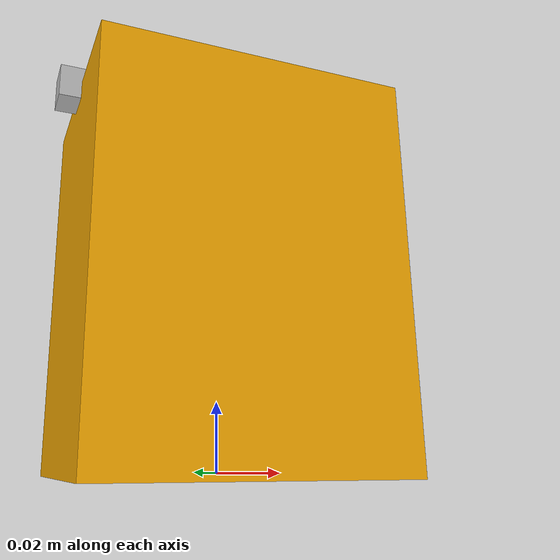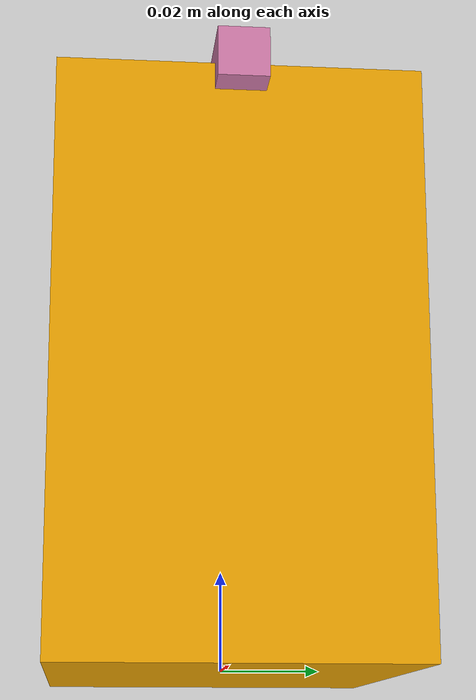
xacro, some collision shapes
<?xml version="1.0"?>
<robot name="onrobot_2fg7_custom_finger_fixture"
       xmlns:xacro="http://www.ros.org/wiki/xacro">
  <xacro:arg name="use_standard_fingertips" default="false"/>

  <xacro:include
    filename="$(find onrobot_2fg7)/urdf/simplemesh_onrobot_2fg7.urdf.xacro"/>

  <link name="user_right_finger">
    <inertial>
      <origin xyz="0 0 0.02" rpy="0 0 0"/>
      <mass value="0.02"/>
      <inertia ixx="0.0000027" ixy="0" ixz="0"
               iyy="0.0000027" iyz="0" izz="0.0000003"/>
    </inertial>
    <visual>
      <origin xyz="0 0 0.02" rpy="0 0 0"/>
      <geometry><box size="0.01 0.01 0.04"/></geometry>
    </visual>
    <collision>
      <origin xyz="0 0 0.02" rpy="0 0 0"/>
      <geometry><box size="0.01 0.01 0.04"/></geometry>
    </collision>
  </link>
  <joint name="user_right_finger_joint" type="fixed">
    <parent link="right_finger_mount"/>
    <child link="user_right_finger"/>
    <origin xyz="0 0 0" rpy="0 0 0"/>
  </joint>

  <link name="user_left_finger">
    <inertial>
      <origin xyz="0 0 0.02" rpy="0 0 0"/>
      <mass value="0.02"/>
      <inertia ixx="0.0000027" ixy="0" ixz="0"
               iyy="0.0000027" iyz="0" izz="0.0000003"/>
    </inertial>
    <visual>
      <origin xyz="0 0 0.02" rpy="0 0 0"/>
      <geometry><box size="0.01 0.01 0.04"/></geometry>
    </visual>
    <collision>
      <origin xyz="0 0 0.02" rpy="0 0 0"/>
      <geometry><box size="0.01 0.01 0.04"/></geometry>
    </collision>
  </link>
  <joint name="user_left_finger_joint" type="fixed">
    <parent link="left_finger_mount"/>
    <child link="user_left_finger"/>
    <origin xyz="0 0 0" rpy="0 0 0"/>
  </joint>
</robot>

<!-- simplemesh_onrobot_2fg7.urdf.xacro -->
<robot name="onrobot_2fg7" xmlns:xacro="http://www.ros.org/wiki/xacro">
  <xacro:include filename="$(find onrobot_2fg7)/urdf/onrobot_2fg7_macro.xacro"/>
  <xacro:onrobot_2fg7/>
</robot>

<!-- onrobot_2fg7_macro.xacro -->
<robot xmlns:xacro="http://www.ros.org/wiki/xacro">

  <!-- ================= Xacro arguments ================= -->

  <xacro:arg name="mesh_path" default="package://onrobot_2fg7/meshes"/>
  <xacro:arg name="visual_detail" default="detailed"/>

  <!-- silicone or aluminum -->
  <xacro:arg name="fingertip_material" default="silicone"/>

  <!-- outwards or inwards -->
  <xacro:arg name="fingertip_orientation" default="outwards"/>
  <xacro:arg name="use_standard_fingertips" default="true"/>

  <!-- Stroke/limits -->
  <xacro:arg name="finger_stroke" default="0.019"/>
  <xacro:arg name="task_aperture" default="0.073"/>
  <xacro:arg name="finger_effort" default="140"/>
  <xacro:arg name="finger_velocity" default="0.45"/>
  <xacro:arg name="backend" default="real"/>
  <xacro:arg name="fake_motion_speed_m_s" default="0.0"/>
  <xacro:arg name="fake_stall" default="0"/>
  <xacro:arg name="isaac_joint_commands_topic" default="isaac_joint_commands"/>
  <xacro:arg name="isaac_joint_states_topic" default="isaac_joint_states"/>
  <xacro:arg name="isaac_state_timeout_ms" default="250"/>
  <xacro:arg name="realtime_update_rate_hz" default="50"/>
  <xacro:arg name="supply_power_w" default="48"/>
  <xacro:arg name="conventional_speed_percent" default="50"/>
  <xacro:arg name="host" default="127.0.0.1"/>
  <xacro:arg name="port" default="502"/>
  <xacro:arg name="transport" default="tcp"/>
  <xacro:arg name="serial_device" default="/dev/ttyUSB0"/>
  <xacro:arg name="baud_rate" default="1000000"/>
  <xacro:arg name="rtu_parity" default="even"/>
  <xacro:arg name="slave_id" default="65"/>
  <xacro:arg name="connect_timeout_ms" default="1000"/>
  <xacro:arg name="read_timeout_ms" default="1000"/>
  <xacro:arg name="write_timeout_ms" default="1000"/>

  <xacro:macro name="onrobot_2fg7"
               params="parent:='' prefix:='' origin_xyz:='0 0 0' origin_rpy:='0 0 0' include_ros2_control:=true">
    <xacro:if value="${parent != ''}">
      <joint name="${prefix}mount_joint" type="fixed">
        <parent link="${parent}"/>
        <child link="${prefix}base_link"/>
        <origin xyz="${origin_xyz}" rpy="${origin_rpy}"/>
      </joint>
    </xacro:if>
    <!-- Constants. -->
    <xacro:property name="x_pi" value="3.14159265359"/>
    <xacro:property name="x_half_pi" value="1.57079632679"/>

    <!-- ================= Fingertip friction values ================= -->

    <!-- Silicone fingertip friction -->
    <xacro:if value="${'$(arg fingertip_material)' == 'silicone'}">
      <xacro:property name="fingertip_mu" value="0.4"/>
    </xacro:if>

    <!-- Aluminum fingertip friction -->
    <xacro:if value="${'$(arg fingertip_material)' == 'aluminum'}">
      <xacro:property name="fingertip_mu" value="0.15"/>
    </xacro:if>

    <!-- ================= Fingertip material + orientation collision values ================= -->

    <!-- Silicone + outwards -->
    <xacro:if value="${'$(arg fingertip_material)' == 'silicone' and '$(arg fingertip_orientation)' == 'outwards'}">
      <xacro:property name="fingertip_top_collision_xyz" value="0.027 0 0.0085"/>
      <xacro:property name="fingertip_top_collision_rpy" value="0 0 0"/>
      <xacro:property name="fingertip_top_collision_size" value="0.038 0.034 0.007"/>

      <xacro:property name="fingertip_bottom_collision_xyz" value="0.0035 0 0.00144"/>
      <xacro:property name="fingertip_bottom_collision_rpy" value="0 0 0"/>
      <xacro:property name="fingertip_bottom_collision_size" value="0.007 0.0274 0.0192"/>
    </xacro:if>

    <!-- Silicone + inwards -->
    <xacro:if value="${'$(arg fingertip_material)' == 'silicone' and '$(arg fingertip_orientation)' == 'inwards'}">
      <xacro:property name="fingertip_top_collision_xyz" value="0.027 0 -0.0085"/>
      <xacro:property name="fingertip_top_collision_rpy" value="0 0 0"/>
      <xacro:property name="fingertip_top_collision_size" value="0.038 0.034 0.007"/>

      <xacro:property name="fingertip_bottom_collision_xyz" value="0.0035 0 -0.00144"/>
      <xacro:property name="fingertip_bottom_collision_rpy" value="0 0 0"/>
      <xacro:property name="fingertip_bottom_collision_size" value="0.007 0.0274 0.0192"/>
    </xacro:if>

    <!-- Aluminum + outwards -->
    <xacro:if value="${'$(arg fingertip_material)' == 'aluminum' and '$(arg fingertip_orientation)' == 'outwards'}">
      <xacro:property name="fingertip_top_collision_xyz" value="0.027 0 0.0085"/>
      <xacro:property name="fingertip_top_collision_rpy" value="0 0 0"/>
      <xacro:property name="fingertip_top_collision_size" value="0.036 0.032 0.005"/>

      <xacro:property name="fingertip_bottom_collision_xyz" value="0.0035 0 0.00144"/>
      <xacro:property name="fingertip_bottom_collision_rpy" value="0 0 0"/>
      <xacro:property name="fingertip_bottom_collision_size" value="0.007 0.0274 0.0192"/>
    </xacro:if>

    <!-- Aluminum + inwards -->
    <xacro:if value="${'$(arg fingertip_material)' == 'aluminum' and '$(arg fingertip_orientation)' == 'inwards'}">
      <xacro:property name="fingertip_top_collision_xyz" value="0.027 0 -0.0085"/>
      <xacro:property name="fingertip_top_collision_rpy" value="0 0 0"/>
      <xacro:property name="fingertip_top_collision_size" value="0.036 0.032 0.005"/>

      <xacro:property name="fingertip_bottom_collision_xyz" value="0.0035 0 -0.00144"/>
      <xacro:property name="fingertip_bottom_collision_rpy" value="0 0 0"/>
      <xacro:property name="fingertip_bottom_collision_size" value="0.007 0.0274 0.0192"/>
    </xacro:if>

    <!-- ================= Fingertip visual orientation ================= -->

    <!-- Outwards visual orientation -->
    <xacro:if value="${'$(arg fingertip_orientation)' == 'outwards'}">
      <xacro:property name="fingertip_yaw" value="0"/>
      <xacro:property name="fingertip_pitch" value="${x_half_pi}"/>
      <xacro:property name="fingertip_roll" value="0"/>
    </xacro:if>

    <!-- Inwards visual orientation -->
    <xacro:if value="${'$(arg fingertip_orientation)' == 'inwards'}">
      <xacro:property name="fingertip_yaw" value="${x_pi}"/>
      <xacro:property name="fingertip_pitch" value="-${x_half_pi}"/>
      <xacro:property name="fingertip_roll" value="0"/>
    </xacro:if>

    <!-- ================= Fingertip inertial data ================= -->

    <xacro:macro name="fingertip_inertial">
      <!-- Original silicone fingertip values -->
      <xacro:if value="${'$(arg fingertip_material)' == 'silicone'}">
        <inertial>
          <origin
            xyz="0.0183615920325445 -2.11640405324973E-06 0.00586622571869662"
            rpy="${x_pi} 0 0" />
          <mass value="0.0328042666854099" />
          <inertia
            ixx="2.83649048895101E-06"
            ixy="-1.25101536754435E-09"
            ixz="-8.61288327156891E-07"
            iyy="5.84747886673199E-06"
            iyz="5.58138778630447E-09"
            izz="7.46158195977564E-06" />
        </inertial>
      </xacro:if>

      <!-- Aluminum fingertip values from the corrected aluminum URDF -->
      <xacro:if value="${'$(arg fingertip_material)' == 'aluminum'}">
        <inertial>
          <origin
            xyz="0.016127 -2.6011E-06 0.0052419"
            rpy="${x_pi} 0 0" />
          <mass value="0.026518" />
          <inertia
            ixx="2.1707E-06"
            ixy="-1.2452E-09"
            ixz="-8.6129E-07"
            iyy="5.0641E-06"
            iyz="5.5811E-09"
            izz="6.1064E-06" />
        </inertial>
      </xacro:if>
    </xacro:macro>

    <!-- ================= Base link ================= -->

    <link name="${prefix}base_link">
      <inertial>
        <origin
          xyz="-0.000250068281809191 -0.000120249294815739 0.0604924064083801"
          rpy="0 0 0" />
        <mass value="1.01367380846164" />
        <inertia
          ixx="0.000795915432608799"
          ixy="-9.38022824934476E-08"
          ixz="4.67926592198595E-07"
          iyy="0.00105686067057979"
          iyz="-2.27483342631346E-07"
          izz="0.000969771607586708" />
      </inertial>

      <visual>
        <origin
          xyz="0 0 0.01394"
          rpy="0 0 0" />
        <geometry>
          <xacro:if value="${'$(arg visual_detail)' == 'low'}">
            <mesh filename="$(arg mesh_path)/base_link_low.dae" />
          </xacro:if>
          <xacro:unless value="${'$(arg visual_detail)' == 'low'}">
            <mesh filename="$(arg mesh_path)/base_link.dae" />
          </xacro:unless>
        </geometry>
      </visual>

      <collision>
        <origin xyz="0 0 0.0561" rpy="0 0 0" />
        <geometry>
          <box size="0.09 0.071 0.11449" />
        </geometry>
        <material name="">
          <color rgba="0.0 0.0 1.0 0.25"/>
        </material>
      </collision>
    </link>

    <!-- ================= Task aperture coordinate ================= -->

    <link name="${prefix}task_aperture_link"/>
    <joint name="${prefix}grip_stroke" type="prismatic">
      <parent link="${prefix}base_link" />
      <child link="${prefix}task_aperture_link" />
      <axis xyz="1 0 0" />
      <limit lower="0" upper="$(arg task_aperture)" effort="$(arg finger_effort)" velocity="$(arg finger_velocity)" />
    </joint>

    <!-- ================= Right finger base ================= -->

    <link name="${prefix}right_finger_base_link">
      <inertial>
        <origin
          xyz="-0.00550328296085684 -0.00447185457977535 -0.00970698346711139"
          rpy="0 0 0" />
        <mass value="0.00892925116074971" />
        <inertia
          ixx="2.69775538975237E-06"
          ixy="-1.23118285874232E-07"
          ixz="-2.38478085951737E-07"
          iyy="2.27015294291925E-06"
          iyz="-4.67205230900068E-07"
          izz="5.82712263180963E-07" />
      </inertial>

      <visual>
        <origin xyz="0 0 0" rpy="0 0 0" />
        <geometry>
          <mesh filename="$(arg mesh_path)/finger_base_link.STL" />
        </geometry>
        <material name="">
          <color rgba="1 1 1 1" />
        </material>
      </visual>
    </link>

    <joint name="${prefix}finger_stroke" type="prismatic">
      <origin
        xyz="0.0115 0 0.11299"
        rpy="3.1416 -1.5708 0" />
      <parent link="${prefix}base_link" />
      <child link="${prefix}right_finger_base_link" />
      <axis xyz="0 0 1" />
      <limit
        lower="0"
        upper="$(arg finger_stroke)"
        effort="$(arg finger_effort)"
        velocity="$(arg finger_velocity)" />
    </joint>

    <!-- ================= Right fingertip ================= -->

    <xacro:if value="$(arg use_standard_fingertips)">
    <link name="${prefix}right_fingertip_link">

      <xacro:fingertip_inertial />

      <visual>
        <origin
          xyz="0 0 0"
          rpy="${fingertip_yaw} ${fingertip_pitch} ${fingertip_roll}" />
        <geometry>
          <mesh filename="$(arg mesh_path)/$(arg fingertip_material)_fingertip_link.dae" />
        </geometry>
      </visual>

      <!-- ================= Right fingertip top collision mesh ================= -->
      <collision name="right_fingertip_top_collision">
        <origin
          xyz="${fingertip_top_collision_xyz}"
          rpy="${fingertip_top_collision_rpy}" />
        <geometry>
          <box size="${fingertip_top_collision_size}" />
        </geometry>
      </collision>

      <!-- ================= Right fingertip bottom collision mesh ================= -->
      <collision name="right_fingertip_bottom_collision">
        <origin
          xyz="${fingertip_bottom_collision_xyz}"
          rpy="${fingertip_bottom_collision_rpy}" />
        <geometry>
          <box size="${fingertip_bottom_collision_size}" />
        </geometry>
      </collision>
    </link>
    </xacro:if>

    <link name="${prefix}right_finger_mount" />

    <joint name="${prefix}right_finger_mount_joint" type="fixed">
      <origin xyz="0 0 0" rpy="0 0 0" />
      <parent link="${prefix}right_finger_base_link" />
      <child link="${prefix}right_finger_mount" />
    </joint>

    <xacro:if value="$(arg use_standard_fingertips)">
    <joint name="${prefix}right_fingertip_joint" type="fixed">
      <origin xyz="0 0 0" rpy="0 0 0" />
      <parent link="${prefix}right_finger_mount" />
      <child link="${prefix}right_fingertip_link" />
    </joint>
    </xacro:if>

    <!-- ================= Left finger base ================= -->

    <link name="${prefix}left_finger_base_link">
      <inertial>
        <origin
          xyz="0 0 0"
          rpy="0 0 0" />
        <mass value="0.00892925116074971" />
        <inertia
          ixx="2.69775538975237E-06"
          ixy="-1.23118285874232E-07"
          ixz="-2.38478085951736E-07"
          iyy="2.27015294291924E-06"
          iyz="-4.67205230900077E-07"
          izz="5.82712263180967E-07" />
      </inertial>

      <visual>
        <origin xyz="0 0 0" rpy="0 0 0" />
        <geometry>
          <mesh filename="$(arg mesh_path)/finger_base_link.STL" />
        </geometry>
        <material name="">
          <color rgba="1 1 1 1" />
        </material>
      </visual>
    </link>

    <joint name="${prefix}left_finger_base_joint" type="prismatic">
      <origin
        xyz="-0.0115 0 0.11299"
        rpy="0 -1.5708 0" />
      <parent link="${prefix}base_link" />
      <child link="${prefix}left_finger_base_link" />
      <axis xyz="0 0 1" />
      <limit
        lower="0"
        upper="$(arg finger_stroke)"
        effort="$(arg finger_effort)"
        velocity="$(arg finger_velocity)" />
      <mimic
        joint="${prefix}finger_stroke"
        multiplier="1.0"
        offset="0" />
    </joint>

    <!-- ================= Left fingertip ================= -->

    <xacro:if value="$(arg use_standard_fingertips)">
    <link name="${prefix}left_fingertip_link">

      <xacro:fingertip_inertial />

      <visual>
        <origin
          xyz="0 0 0"
          rpy="${fingertip_yaw} ${fingertip_pitch} ${fingertip_roll}" />
        <geometry>
          <mesh filename="$(arg mesh_path)/$(arg fingertip_material)_fingertip_link.dae" />
        </geometry>
      </visual>

      <!-- ================= Left fingertip top collision mesh ================= -->
      <collision name="left_fingertip_top_collision">
        <origin
          xyz="${fingertip_top_collision_xyz}"
          rpy="${fingertip_top_collision_rpy}" />
        <geometry>
          <box size="${fingertip_top_collision_size}" />
        </geometry>
      </collision>

      <!-- ================= Left fingertip bottom collision mesh ================= -->
      <collision name="left_fingertip_bottom_collision">
        <origin
          xyz="${fingertip_bottom_collision_xyz}"
          rpy="${fingertip_bottom_collision_rpy}" />
        <geometry>
          <box size="${fingertip_bottom_collision_size}" />
        </geometry>
      </collision>
    </link>
    </xacro:if>

    <link name="${prefix}left_finger_mount" />

    <joint name="${prefix}left_finger_mount_joint" type="fixed">
      <origin xyz="0 0 0" rpy="0 0 0" />
      <parent link="${prefix}left_finger_base_link" />
      <child link="${prefix}left_finger_mount" />
    </joint>

    <xacro:if value="$(arg use_standard_fingertips)">
    <joint name="${prefix}left_fingertip_joint" type="fixed">
      <origin xyz="0 0 0" rpy="0 0 0" />
      <parent link="${prefix}left_finger_mount" />
      <child link="${prefix}left_fingertip_link" />
    </joint>
    </xacro:if>

    <!-- ================= Gazebo fingertip friction ================= -->

    <xacro:if value="$(arg use_standard_fingertips)">
    <gazebo reference="${prefix}right_fingertip_link">
      <mu1>${fingertip_mu}</mu1>
      <mu2>${fingertip_mu}</mu2>
    </gazebo>

    <gazebo reference="${prefix}left_fingertip_link">
      <mu1>${fingertip_mu}</mu1>
      <mu2>${fingertip_mu}</mu2>
    </gazebo>
    </xacro:if>

    <xacro:if value="${include_ros2_control}">
      <xacro:include filename="$(find onrobot_2fg7)/urdf/onrobot_2fg7_ros2_control.xacro" />
      <xacro:onrobot_2fg7_ros2_control
        backend="$(arg backend)" host="$(arg host)" port="$(arg port)"
        transport="$(arg transport)"
        serial_device="$(arg serial_device)"
        baud_rate="$(arg baud_rate)"
        rtu_parity="$(arg rtu_parity)"
        slave_id="$(arg slave_id)"
        connect_timeout_ms="$(arg connect_timeout_ms)"
        read_timeout_ms="$(arg read_timeout_ms)"
        write_timeout_ms="$(arg write_timeout_ms)"
        task_aperture="$(arg task_aperture)"
        fake_motion_speed_m_s="$(arg fake_motion_speed_m_s)"
        fake_stall="$(arg fake_stall)"
        isaac_joint_commands_topic="$(arg isaac_joint_commands_topic)"
        isaac_joint_states_topic="$(arg isaac_joint_states_topic)"
        isaac_state_timeout_ms="$(arg isaac_state_timeout_ms)"
        realtime_update_rate_hz="$(arg realtime_update_rate_hz)"
        supply_power_w="$(arg supply_power_w)"
        conventional_speed_percent="$(arg conventional_speed_percent)"
        prefix="${prefix}" />

      </xacro:if>
  </xacro:macro>
</robot>
